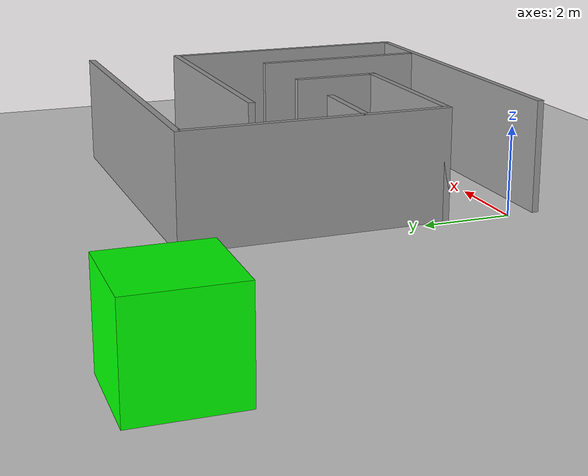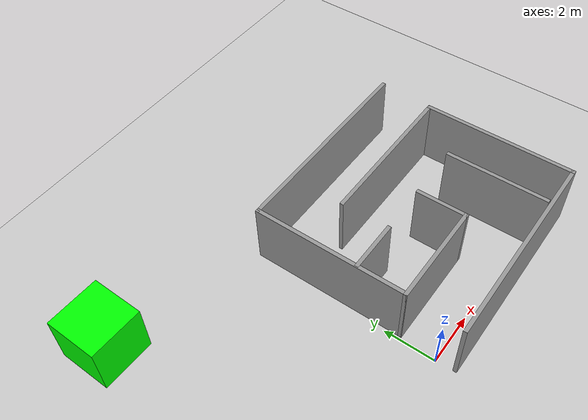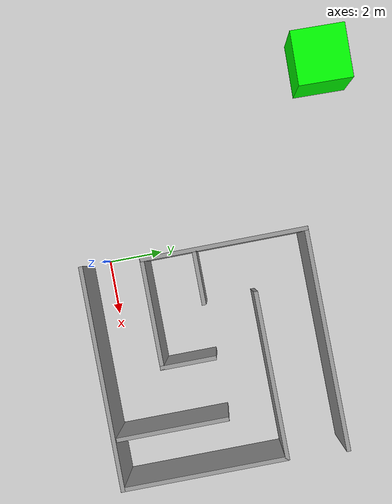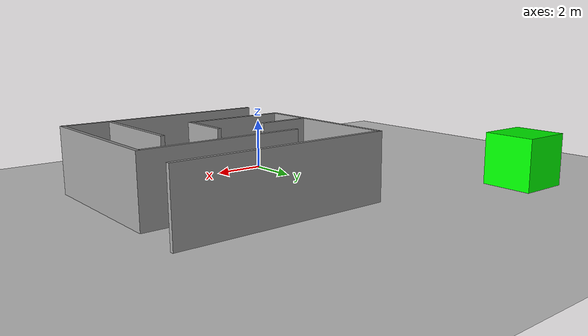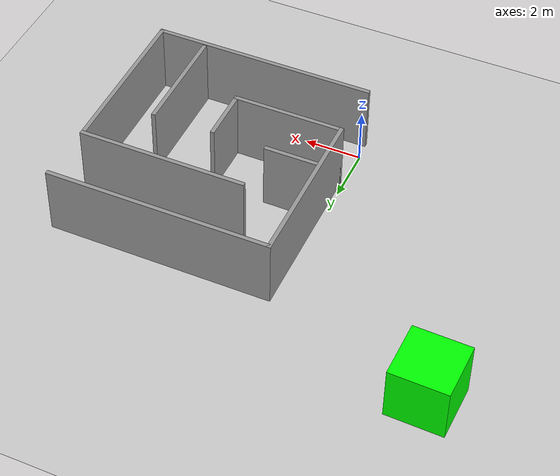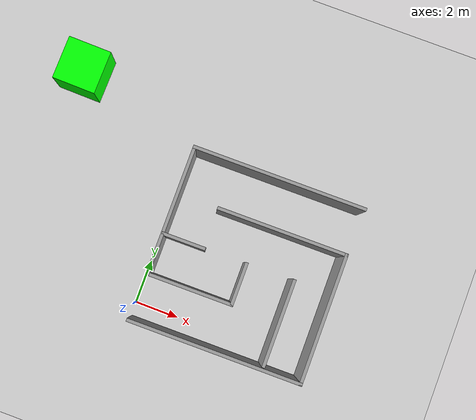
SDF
<sdf version="1.7">
 <world name="default">
  <light name="sun" type="directional">
   <pose>0 0 10 0 -0 0</pose>
   <diffuse>0.8 0.8 0.8 1</diffuse>
   <specular>0.2 0.2 0.2 1</specular>
   <attenuation>
    <range>1000</range>
    <constant>0.9</constant>
    <linear>0.01</linear>
    <quadratic>0.001</quadratic>
   </attenuation>
   <direction>-0.5 0.1 -0.9</direction>
   <spot><inner_angle>0</inner_angle><outer_angle>0</outer_angle><falloff>0</falloff></spot>
  </light>
  <model name="ground_plane">
   <static>1</static>
   <link name="link">
    <collision name="collision">
     <geometry><plane><normal>0 0 1</normal><size>100 100</size></plane></geometry>
     <surface>
      <contact><collide_bitmask>65535</collide_bitmask></contact>
      <friction><ode><mu>100</mu><mu2>50</mu2></ode></friction>
     </surface>
    </collision>
    <visual name="visual">
     <cast_shadows>0</cast_shadows>
     <geometry><plane><normal>0 0 1</normal><size>100 100</size></plane></geometry>
     <material>
      <script><uri>file://media/materials/scripts/gazebo.material</uri><name>Gazebo/Grey</name></script>
     </material>
    </visual>
   </link>
  </model>
  <gravity>0 0 -9.8</gravity>
  <magnetic_field>6e-06 2.3e-05 -4.2e-05</magnetic_field>
  <atmosphere type="adiabatic"/>
  <physics name="default_physics" default="0" type="ode">
   <max_step_size>0.001</max_step_size>
   <real_time_factor>1</real_time_factor>
   <real_time_update_rate>1000</real_time_update_rate>
  </physics>
  <scene><ambient>0.4 0.4 0.4 1</ambient><background>0.7 0.7 0.7 1</background><shadows>1</shadows></scene>
  <audio><device>default</device></audio>
  <spherical_coordinates>
   <surface_model>EARTH_WGS84</surface_model>
   <latitude_deg>0</latitude_deg>
   <longitude_deg>0</longitude_deg>
   <elevation>0</elevation>
   <heading_deg>0</heading_deg>
  </spherical_coordinates>
  <model name="small_maze">
   <pose>4.06607 3.31731 0 0 0 -1.56919</pose>
   <link name="Wall_11">
    <collision name="Wall_11_Collision">
     <geometry><box><size>6 0.15 2.5</size></box></geometry>
     <pose>0 0 1.25 0 -0 0</pose>
    </collision>
    <visual name="Wall_11_Visual">
     <pose>0 0 1.25 0 -0 0</pose>
     <geometry><box><size>6 0.15 2.5</size></box></geometry>
     <material>
      <script><uri>file://media/materials/scripts/gazebo.material</uri><name>Gazebo/Grey</name></script>
      <ambient>1 1 1 1</ambient>
     </material>
     <meta><layer>0</layer></meta>
    </visual>
    <pose>-1.85079 0.957737 0 0 -0 1.5708</pose>
   </link>
   <link name="Wall_12">
    <collision name="Wall_12_Collision">
     <geometry><box><size>6 0.15 2.5</size></box></geometry>
     <pose>0 0 1.25 0 -0 0</pose>
    </collision>
    <visual name="Wall_12_Visual">
     <pose>0 0 1.25 0 -0 0</pose>
     <geometry><box><size>6 0.15 2.5</size></box></geometry>
     <material>
      <script><uri>file://media/materials/scripts/gazebo.material</uri><name>Gazebo/Grey</name></script>
      <ambient>1 1 1 1</ambient>
     </material>
     <meta><layer>0</layer></meta>
    </visual>
    <pose>1.07421 3.88274 0 0 -0 0</pose>
   </link>
   <link name="Wall_13">
    <collision name="Wall_13_Collision">
     <geometry><box><size>8 0.15 2.5</size></box></geometry>
     <pose>0 0 1.25 0 -0 0</pose>
    </collision>
    <visual name="Wall_13_Visual">
     <pose>0 0 1.25 0 -0 0</pose>
     <geometry><box><size>8 0.15 2.5</size></box></geometry>
     <material>
      <script><uri>file://media/materials/scripts/gazebo.material</uri><name>Gazebo/Grey</name></script>
      <ambient>1 1 1 1</ambient>
     </material>
     <meta><layer>0</layer></meta>
    </visual>
    <pose>3.99921 -0.042263 0 0 -0 -1.5708</pose>
   </link>
   <link name="Wall_15">
    <collision name="Wall_15_Collision">
     <geometry><box><size>4 0.15 2.5</size></box></geometry>
     <pose>0 0 1.25 0 -0 0</pose>
    </collision>
    <visual name="Wall_15_Visual">
     <pose>0 0 1.25 0 -0 0</pose>
     <geometry><box><size>4 0.15 2.5</size></box></geometry>
     <material>
      <script><uri>file://media/materials/scripts/gazebo.material</uri><name>Gazebo/Grey</name></script>
      <ambient>1 1 1 1</ambient>
     </material>
     <meta><layer>0</layer></meta>
    </visual>
    <pose>1.8936 2.14439 0 0 -0 0</pose>
   </link>
   <link name="Wall_4">
    <collision name="Wall_4_Collision">
     <geometry><box><size>8 0.15 2.5</size></box></geometry>
     <pose>0 0 1.25 0 -0 0</pose>
    </collision>
    <visual name="Wall_4_Visual">
     <pose>0 0 1.25 0 -0 0</pose>
     <geometry><box><size>8 0.15 2.5</size></box></geometry>
     <material>
      <script><uri>file://media/materials/scripts/gazebo.material</uri><name>Gazebo/Grey</name></script>
      <ambient>1 1 1 1</ambient>
     </material>
     <meta><layer>0</layer></meta>
    </visual>
    <pose>-3.99921 0.042263 0 0 -0 -1.5708</pose>
   </link>
   <link name="Wall_5">
    <collision name="Wall_5_Collision">
     <geometry><box><size>6 0.15 2.5</size></box></geometry>
     <pose>0 0 1.25 0 -0 0</pose>
    </collision>
    <visual name="Wall_5_Visual">
     <pose>0 0 1.25 0 -0 0</pose>
     <geometry><box><size>6 0.15 2.5</size></box></geometry>
     <material>
      <script><uri>file://media/materials/scripts/gazebo.material</uri><name>Gazebo/Grey</name></script>
      <ambient>1 1 1 1</ambient>
     </material>
     <meta><layer>0</layer></meta>
    </visual>
    <pose>-1.07421 -3.88274 0 0 -0 0</pose>
   </link>
   <link name="Wall_6">
    <collision name="Wall_6_Collision">
     <geometry><box><size>4 0.15 2.5</size></box></geometry>
     <pose>0 0 1.25 0 -0 0</pose>
    </collision>
    <visual name="Wall_6_Visual">
     <pose>0 0 1.25 0 -0 0</pose>
     <geometry><box><size>4 0.15 2.5</size></box></geometry>
     <material>
      <script><uri>file://media/materials/scripts/gazebo.material</uri><name>Gazebo/Grey</name></script>
      <ambient>1 1 1 1</ambient>
     </material>
     <meta><layer>0</layer></meta>
    </visual>
    <pose>1.85079 -1.95774 0 0 -0 1.5708</pose>
   </link>
   <link name="Wall_7">
    <collision name="Wall_7_Collision">
     <geometry><box><size>2 0.15 2.5</size></box></geometry>
     <pose>0 0 1.25 0 -0 0</pose>
    </collision>
    <visual name="Wall_7_Visual">
     <pose>0 0 1.25 0 -0 0</pose>
     <geometry><box><size>2 0.15 2.5</size></box></geometry>
     <material>
      <script><uri>file://media/materials/scripts/gazebo.material</uri><name>Gazebo/Grey</name></script>
      <ambient>1 1 1 1</ambient>
     </material>
     <meta><layer>0</layer></meta>
    </visual>
    <pose>0.925794 -0.032737 0 0 -0 3.14159</pose>
   </link>
   <link name="Wall_9">
    <collision name="Wall_9_Collision">
     <geometry><box><size>2 0.15 2.5</size></box></geometry>
     <pose>0 0 1.25 0 -0 0</pose>
    </collision>
    <visual name="Wall_9_Visual">
     <pose>0 0 1.25 0 -0 0</pose>
     <geometry><box><size>2 0.15 2.5</size></box></geometry>
     <material>
      <script><uri>file://media/materials/scripts/gazebo.material</uri><name>Gazebo/Grey</name></script>
      <ambient>1 1 1 1</ambient>
     </material>
     <meta><layer>0</layer></meta>
    </visual>
    <pose>0.002794 -2.91624 0 0 -0 1.5708</pose>
   </link>
   <static>1</static>
  </model>
  <model name="green_box">
   <link name="link_0">
    <inertial>
     <mass>100</mass>
     <inertia><ixx>66.6667</ixx><ixy>0</ixy><ixz>0</ixz><iyy>66.6667</iyy><iyz>0</iyz><izz>66.6667</izz></inertia>
    </inertial>
    <pose>-0.018872 -0.127453 0.5 0 -0 0</pose>
    <visual name="visual">
     <geometry><box><size>2 2 2</size></box></geometry>
     <material>
      <lighting>1</lighting>
      <script><uri>file://media/materials/scripts/gazebo.material</uri><name>Gazebo/Grey</name></script>
      <shader type="vertex"><normal_map>__default__</normal_map></shader>
      <ambient>0 1 0 1</ambient>
      <diffuse>0 1 0 1</diffuse>
      <specular>0 1 0 1</specular>
      <emissive>0 0 0 1</emissive>
     </material>
    </visual>
    <collision name="collision">
     <geometry><box><size>2 2 2</size></box></geometry>
     <surface>
      <friction>
       <ode><mu>1</mu><mu2>1</mu2><fdir1>0 0 0</fdir1><slip1>0</slip1><slip2>0</slip2></ode>
       <torsional>
        <coefficient>1</coefficient>
        <patch_radius>0</patch_radius>
        <surface_radius>0</surface_radius>
        <use_patch_radius>1</use_patch_radius>
        <ode><slip>0</slip></ode>
       </torsional>
      </friction>
      <bounce><restitution_coefficient>0</restitution_coefficient><threshold>1e+06</threshold></bounce>
      <contact>
       <collide_without_contact>0</collide_without_contact>
       <collide_without_contact_bitmask>1</collide_without_contact_bitmask>
       <collide_bitmask>1</collide_bitmask>
       <ode>
        <soft_cfm>0</soft_cfm>
        <soft_erp>0.2</soft_erp>
        <kp>1e+13</kp>
        <kd>1</kd>
        <max_vel>0.01</max_vel>
        <min_depth>0</min_depth>
       </ode>
       <bullet>
        <split_impulse>1</split_impulse>
        <split_impulse_penetration_threshold>-0.01</split_impulse_penetration_threshold>
        <soft_cfm>0</soft_cfm>
        <soft_erp>0.2</soft_erp>
        <kp>1e+13</kp>
        <kd>1</kd>
       </bullet>
      </contact>
     </surface>
    </collision>
   </link>
   <static>0</static>
   <pose>-5.82043 9.21304 0.5 0 0 -0.022304</pose>
  </model>
 </world>
</sdf>
